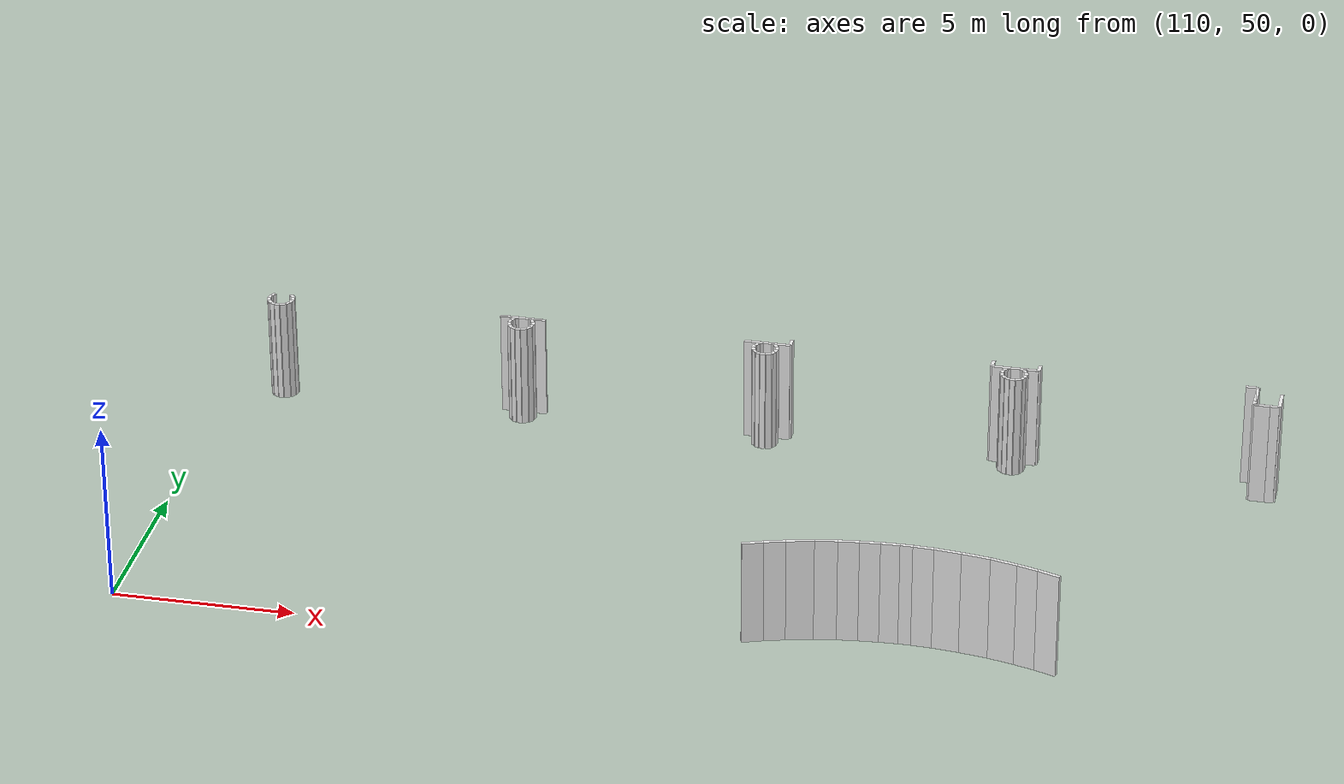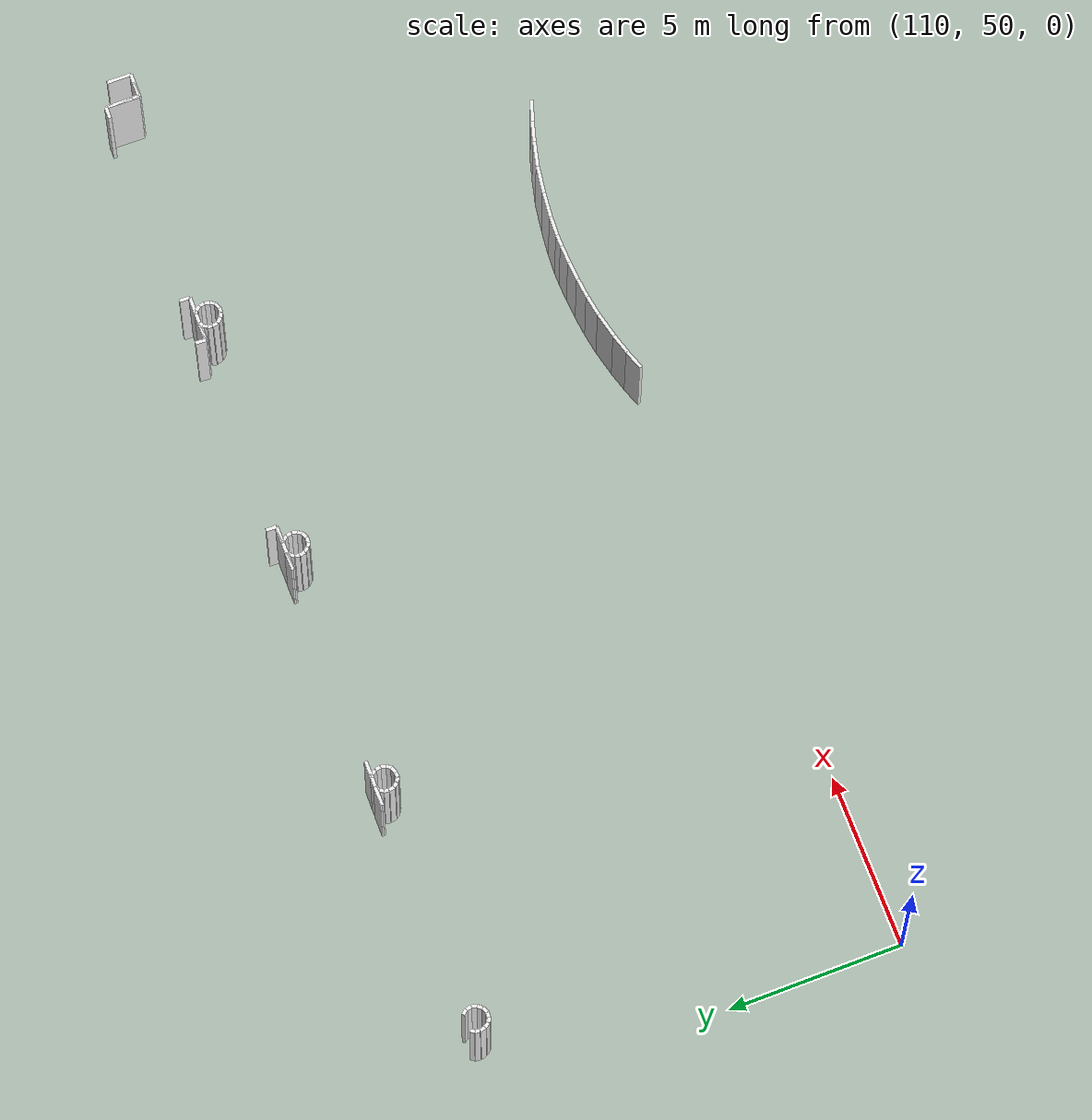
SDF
<sdf version="1.6">
 <world name="default">
  <model name="wall_139.0_61.9_1.5">
   <static>true</static>
   <pose>139.04000000000815 61.91500000003725 1.5 0 0 3.112189366044838</pose>
   <link name="link">
    <visual name="visual">
     <geometry><box><size>0.34014702705292804 0.1 3</size></box></geometry>
     <material>
      <script><uri>file://media/materials/scripts/gazebo.material</uri><name>Gazebo/White</name></script>
     </material>
    </visual>
    <collision name="collision"><geometry><box><size>0.34014702705292804 0.1 3</size></box></geometry></collision>
   </link>
  </model>
  <model name="wall_134.9_51.0_1.5">
   <static>true</static>
   <pose>134.91500000000815 51.03500000014901 1.5 0 0 2.799642826681837</pose>
   <link name="link">
    <visual name="visual">
     <geometry><box><size>0.6262587324856838 0.1 3</size></box></geometry>
     <material>
      <script><uri>file://media/materials/scripts/gazebo.material</uri><name>Gazebo/White</name></script>
     </material>
    </visual>
    <collision name="collision"><geometry><box><size>0.6262587324856838 0.1 3</size></box></geometry></collision>
   </link>
  </model>
  <model name="wall_134.3_51.2_1.5">
   <static>true</static>
   <pose>134.3399999999965 51.21999999997206 1.5 0 0 2.863292995106354</pose>
   <link name="link">
    <visual name="visual">
     <geometry><box><size>0.5824087910532124 0.1 3</size></box></geometry>
     <material>
      <script><uri>file://media/materials/scripts/gazebo.material</uri><name>Gazebo/White</name></script>
     </material>
    </visual>
    <collision name="collision"><geometry><box><size>0.5824087910532124 0.1 3</size></box></geometry></collision>
   </link>
  </model>
  <model name="wall_133.7_51.4_1.5">
   <static>true</static>
   <pose>133.70000000001164 51.389999999897555 1.5 0 0 2.896613990234664</pose>
   <link name="link">
    <visual name="visual">
     <geometry><box><size>0.7421590126247316 0.1 3</size></box></geometry>
     <material>
      <script><uri>file://media/materials/scripts/gazebo.material</uri><name>Gazebo/White</name></script>
     </material>
    </visual>
    <collision name="collision"><geometry><box><size>0.7421590126247316 0.1 3</size></box></geometry></collision>
   </link>
  </model>
  <model name="wall_133.0_51.5_1.5">
   <static>true</static>
   <pose>132.95000000001164 51.54000000003725 1.5 0 0 2.9889433250599438</pose>
   <link name="link">
    <visual name="visual">
     <geometry><box><size>0.7891767863225628 0.1 3</size></box></geometry>
     <material>
      <script><uri>file://media/materials/scripts/gazebo.material</uri><name>Gazebo/White</name></script>
     </material>
    </visual>
    <collision name="collision"><geometry><box><size>0.7891767863225628 0.1 3</size></box></geometry></collision>
   </link>
  </model>
  <model name="wall_132.2_51.6_1.5">
   <static>true</static>
   <pose>132.19500000000698 51.640000000130385 1.5 0 0 3.0324391905773007</pose>
   <link name="link">
    <visual name="visual">
     <geometry><box><size>0.7343704786990871 0.1 3</size></box></geometry>
     <material>
      <script><uri>file://media/materials/scripts/gazebo.material</uri><name>Gazebo/White</name></script>
     </material>
    </visual>
    <collision name="collision"><geometry><box><size>0.7343704786990871 0.1 3</size></box></geometry></collision>
   </link>
  </model>
  <model name="wall_131.6_51.7_1.5">
   <static>true</static>
   <pose>131.55000000001746 51.69500000006519 1.5 0 0 3.0880723854950856</pose>
   <link name="link">
    <visual name="visual">
     <geometry><box><size>0.5608029956991125 0.1 3</size></box></geometry>
     <material>
      <script><uri>file://media/materials/scripts/gazebo.material</uri><name>Gazebo/White</name></script>
     </material>
    </visual>
    <collision name="collision"><geometry><box><size>0.5608029956991125 0.1 3</size></box></geometry></collision>
   </link>
  </model>
  <model name="wall_131.1_51.7_1.5">
   <static>true</static>
   <pose>131.10000000000582 51.70999999996275 1.5 0 0 3.141592653589793</pose>
   <link name="link">
    <visual name="visual">
     <geometry><box><size>0.34000000002561137 0.1 3</size></box></geometry>
     <material>
      <script><uri>file://media/materials/scripts/gazebo.material</uri><name>Gazebo/White</name></script>
     </material>
    </visual>
    <collision name="collision"><geometry><box><size>0.34000000002561137 0.1 3</size></box></geometry></collision>
   </link>
  </model>
  <model name="wall_130.7_51.7_1.5">
   <static>true</static>
   <pose>130.67499999998836 51.699999999953434 1.5 0 0 -3.102397051626987</pose>
   <link name="link">
    <visual name="visual">
     <geometry><box><size>0.5103920062170298 0.1 3</size></box></geometry>
     <material>
      <script><uri>file://media/materials/scripts/gazebo.material</uri><name>Gazebo/White</name></script>
     </material>
    </visual>
    <collision name="collision"><geometry><box><size>0.5103920062170298 0.1 3</size></box></geometry></collision>
   </link>
  </model>
  <model name="wall_130.1_51.7_1.5">
   <static>true</static>
   <pose>130.14499999998952 51.669999999925494 1.5 0 0 -3.068993199790391</pose>
   <link name="link">
    <visual name="visual">
     <geometry><box><size>0.5514526271495808 0.1 3</size></box></geometry>
     <material>
      <script><uri>file://media/materials/scripts/gazebo.material</uri><name>Gazebo/White</name></script>
     </material>
    </visual>
    <collision name="collision"><geometry><box><size>0.5514526271495808 0.1 3</size></box></geometry></collision>
   </link>
  </model>
  <model name="wall_129.6_51.6_1.5">
   <static>true</static>
   <pose>129.5899999999965 51.61999999987893 1.5 0 0 -3.0348569808415653</pose>
   <link name="link">
    <visual name="visual">
     <geometry><box><size>0.5632051136167868 0.1 3</size></box></geometry>
     <material>
      <script><uri>file://media/materials/scripts/gazebo.material</uri><name>Gazebo/White</name></script>
     </material>
    </visual>
    <collision name="collision"><geometry><box><size>0.5632051136167868 0.1 3</size></box></geometry></collision>
   </link>
  </model>
  <model name="wall_129.0_51.5_1.5">
   <static>true</static>
   <pose>129.0100000000093 51.54000000003725 1.5 0 0 -2.9764439767729747</pose>
   <link name="link">
    <visual name="visual">
     <geometry><box><size>0.6082762529456124 0.1 3</size></box></geometry>
     <material>
      <script><uri>file://media/materials/scripts/gazebo.material</uri><name>Gazebo/White</name></script>
     </material>
    </visual>
    <collision name="collision"><geometry><box><size>0.6082762529456124 0.1 3</size></box></geometry></collision>
   </link>
  </model>
  <model name="wall_128.4_51.4_1.5">
   <static>true</static>
   <pose>128.35000000000582 51.40500000002794 1.5 0 0 -2.909727992235222</pose>
   <link name="link">
    <visual name="visual">
     <geometry><box><size>0.7397972696466099 0.1 3</size></box></geometry>
     <material>
      <script><uri>file://media/materials/scripts/gazebo.material</uri><name>Gazebo/White</name></script>
     </material>
    </visual>
    <collision name="collision"><geometry><box><size>0.7397972696466099 0.1 3</size></box></geometry></collision>
   </link>
  </model>
  <model name="wall_127.7_51.2_1.5">
   <static>true</static>
   <pose>127.70999999999185 51.23999999999069 1.5 0 0 -2.863292995106354</pose>
   <link name="link">
    <visual name="visual">
     <geometry><box><size>0.5824087910532124 0.1 3</size></box></geometry>
     <material>
      <script><uri>file://media/materials/scripts/gazebo.material</uri><name>Gazebo/White</name></script>
     </material>
    </visual>
    <collision name="collision"><geometry><box><size>0.5824087910532124 0.1 3</size></box></geometry></collision>
   </link>
  </model>
  <model name="wall_127.2_51.1_1.5">
   <static>true</static>
   <pose>127.15499999999884 51.06500000017695 1.5 0 0 -2.8089729621001154</pose>
   <link name="link">
    <visual name="visual">
     <geometry><box><size>0.581893461009797 0.1 3</size></box></geometry>
     <material>
      <script><uri>file://media/materials/scripts/gazebo.material</uri><name>Gazebo/White</name></script>
     </material>
    </visual>
    <collision name="collision"><geometry><box><size>0.581893461009797 0.1 3</size></box></geometry></collision>
   </link>
  </model>
  <model name="wall_111.2_61.9_1.5">
   <static>true</static>
   <pose>111.22000000000116 61.875 1.5 0 0 -2.199592611857395</pose>
   <link name="link">
    <visual name="visual">
     <geometry><box><size>0.13601470536809043 0.1 3</size></box></geometry>
     <material>
      <script><uri>file://media/materials/scripts/gazebo.material</uri><name>Gazebo/White</name></script>
     </material>
    </visual>
    <collision name="collision"><geometry><box><size>0.13601470536809043 0.1 3</size></box></geometry></collision>
   </link>
  </model>
  <model name="wall_111.2_61.8_1.5">
   <static>true</static>
   <pose>111.16500000000815 61.75499999988824 1.5 0 0 -1.7975951748160817</pose>
   <link name="link">
    <visual name="visual">
     <geometry><box><size>0.13341664052556057 0.1 3</size></box></geometry>
     <material>
      <script><uri>file://media/materials/scripts/gazebo.material</uri><name>Gazebo/White</name></script>
     </material>
    </visual>
    <collision name="collision"><geometry><box><size>0.13341664052556057 0.1 3</size></box></geometry></collision>
   </link>
  </model>
  <model name="wall_111.2_61.6_1.5">
   <static>true</static>
   <pose>111.1700000000128 61.609999999869615 1.5 0 0 -1.3258176640104304</pose>
   <link name="link">
    <visual name="visual">
     <geometry><box><size>0.16492422516418664 0.1 3</size></box></geometry>
     <material>
      <script><uri>file://media/materials/scripts/gazebo.material</uri><name>Gazebo/White</name></script>
     </material>
    </visual>
    <collision name="collision"><geometry><box><size>0.16492422516418664 0.1 3</size></box></geometry></collision>
   </link>
  </model>
  <model name="wall_111.2_61.5_1.5">
   <static>true</static>
   <pose>111.23500000001513 61.46499999985099 1.5 0 0 -0.9652516626544161</pose>
   <link name="link">
    <visual name="visual">
     <geometry><box><size>0.15811388293111006 0.1 3</size></box></geometry>
     <material>
      <script><uri>file://media/materials/scripts/gazebo.material</uri><name>Gazebo/White</name></script>
     </material>
    </visual>
    <collision name="collision"><geometry><box><size>0.15811388293111006 0.1 3</size></box></geometry></collision>
   </link>
  </model>
  <model name="wall_111.3_61.4_1.5">
   <static>true</static>
   <pose>111.34500000000116 61.36999999987893 1.5 0 0 -0.4324077760816295</pose>
   <link name="link">
    <visual name="visual">
     <geometry><box><size>0.14317821060755806 0.1 3</size></box></geometry>
     <material>
      <script><uri>file://media/materials/scripts/gazebo.material</uri><name>Gazebo/White</name></script>
     </material>
    </visual>
    <collision name="collision"><geometry><box><size>0.14317821060755806 0.1 3</size></box></geometry></collision>
   </link>
  </model>
  <model name="wall_111.5_61.3_1.5">
   <static>true</static>
   <pose>111.47999999998137 61.33499999996275 1.5 0 0 -0.07130746318975038</pose>
   <link name="link">
    <visual name="visual">
     <geometry><box><size>0.1403566884741914 0.1 3</size></box></geometry>
     <material>
      <script><uri>file://media/materials/scripts/gazebo.material</uri><name>Gazebo/White</name></script>
     </material>
    </visual>
    <collision name="collision"><geometry><box><size>0.1403566884741914 0.1 3</size></box></geometry></collision>
   </link>
  </model>
  <model name="wall_111.6_61.4_1.5">
   <static>true</static>
   <pose>111.63000000000466 61.36499999999069 1.5 0 0 0.41241044064316335</pose>
   <link name="link">
    <visual name="visual">
     <geometry><box><size>0.17464249192840064 0.1 3</size></box></geometry>
     <material>
      <script><uri>file://media/materials/scripts/gazebo.material</uri><name>Gazebo/White</name></script>
     </material>
    </visual>
    <collision name="collision"><geometry><box><size>0.17464249192840064 0.1 3</size></box></geometry></collision>
   </link>
  </model>
  <model name="wall_111.8_61.5_1.5">
   <static>true</static>
   <pose>111.76000000000931 61.45999999996275 1.5 0 0 0.8760580511707278</pose>
   <link name="link">
    <visual name="visual">
     <geometry><box><size>0.15620499358908305 0.1 3</size></box></geometry>
     <material>
      <script><uri>file://media/materials/scripts/gazebo.material</uri><name>Gazebo/White</name></script>
     </material>
    </visual>
    <collision name="collision"><geometry><box><size>0.15620499358908305 0.1 3</size></box></geometry></collision>
   </link>
  </model>
  <model name="wall_111.8_61.6_1.5">
   <static>true</static>
   <pose>111.8299999999872 61.59499999997206 1.5 0 0 1.310193935023403</pose>
   <link name="link">
    <visual name="visual">
     <geometry><box><size>0.15524174686721334 0.1 3</size></box></geometry>
     <material>
      <script><uri>file://media/materials/scripts/gazebo.material</uri><name>Gazebo/White</name></script>
     </material>
    </visual>
    <collision name="collision"><geometry><box><size>0.15524174686721334 0.1 3</size></box></geometry></collision>
   </link>
  </model>
  <model name="wall_111.8_61.7_1.5">
   <static>true</static>
   <pose>111.83499999999185 61.74499999987893 1.5 0 0 1.7681918865701522</pose>
   <link name="link">
    <visual name="visual">
     <geometry><box><size>0.15297058531052382 0.1 3</size></box></geometry>
     <material>
      <script><uri>file://media/materials/scripts/gazebo.material</uri><name>Gazebo/White</name></script>
     </material>
    </visual>
    <collision name="collision"><geometry><box><size>0.15297058531052382 0.1 3</size></box></geometry></collision>
   </link>
  </model>
  <model name="wall_111.8_61.9_1.5">
   <static>true</static>
   <pose>111.76999999998952 61.88500000000931 1.5 0 0 2.2264919518895905</pose>
   <link name="link">
    <visual name="visual">
     <geometry><box><size>0.16401219497037284 0.1 3</size></box></geometry>
     <material>
      <script><uri>file://media/materials/scripts/gazebo.material</uri><name>Gazebo/White</name></script>
     </material>
    </visual>
    <collision name="collision"><geometry><box><size>0.16401219497037284 0.1 3</size></box></geometry></collision>
   </link>
  </model>
  <model name="wall_118.1_61.9_1.5">
   <static>true</static>
   <pose>118.11999999999534 61.89999999990687 1.5 0 0 0.0</pose>
   <link name="link">
    <visual name="visual">
     <geometry><box><size>0.5400000000372529 0.1 3</size></box></geometry>
     <material>
      <script><uri>file://media/materials/scripts/gazebo.material</uri><name>Gazebo/White</name></script>
     </material>
    </visual>
    <collision name="collision"><geometry><box><size>0.5400000000372529 0.1 3</size></box></geometry></collision>
   </link>
  </model>
  <model name="wall_118.3_61.9_1.5">
   <static>true</static>
   <pose>118.3300000000163 61.86499999999069 1.5 0 0 -2.6135182061888536</pose>
   <link name="link">
    <visual name="visual">
     <geometry><box><size>0.1389244398060078 0.1 3</size></box></geometry>
     <material>
      <script><uri>file://media/materials/scripts/gazebo.material</uri><name>Gazebo/White</name></script>
     </material>
    </visual>
    <collision name="collision"><geometry><box><size>0.1389244398060078 0.1 3</size></box></geometry></collision>
   </link>
  </model>
  <model name="wall_118.2_61.8_1.5">
   <static>true</static>
   <pose>118.23500000001513 61.7750000001397 1.5 0 0 -2.1375255449004795</pose>
   <link name="link">
    <visual name="visual">
     <geometry><box><size>0.13038404799780207 0.1 3</size></box></geometry>
     <material>
      <script><uri>file://media/materials/scripts/gazebo.material</uri><name>Gazebo/White</name></script>
     </material>
    </visual>
    <collision name="collision"><geometry><box><size>0.13038404799780207 0.1 3</size></box></geometry></collision>
   </link>
  </model>
  <model name="wall_118.2_61.7_1.5">
   <static>true</static>
   <pose>118.18499999999767 61.65500000002794 1.5 0 0 -1.7975951744563714</pose>
   <link name="link">
    <visual name="visual">
     <geometry><box><size>0.1334166409923854 0.1 3</size></box></geometry>
     <material>
      <script><uri>file://media/materials/scripts/gazebo.material</uri><name>Gazebo/White</name></script>
     </material>
    </visual>
    <collision name="collision"><geometry><box><size>0.1334166409923854 0.1 3</size></box></geometry></collision>
   </link>
  </model>
  <model name="wall_118.2_61.5_1.5">
   <static>true</static>
   <pose>118.18499999999767 61.51000000000931 1.5 0 0 -1.3854483762720382</pose>
   <link name="link">
    <visual name="visual">
     <geometry><box><size>0.16278820565491986 0.1 3</size></box></geometry>
     <material>
      <script><uri>file://media/materials/scripts/gazebo.material</uri><name>Gazebo/White</name></script>
     </material>
    </visual>
    <collision name="collision"><geometry><box><size>0.16278820565491986 0.1 3</size></box></geometry></collision>
   </link>
  </model>
  <model name="wall_118.2_61.4_1.5">
   <static>true</static>
   <pose>118.25 61.37000000011176 1.5 0 0 -0.8760580511707278</pose>
   <link name="link">
    <visual name="visual">
     <geometry><box><size>0.15620499358908305 0.1 3</size></box></geometry>
     <material>
      <script><uri>file://media/materials/scripts/gazebo.material</uri><name>Gazebo/White</name></script>
     </material>
    </visual>
    <collision name="collision"><geometry><box><size>0.15620499358908305 0.1 3</size></box></geometry></collision>
   </link>
  </model>
  <model name="wall_118.4_61.3_1.5">
   <static>true</static>
   <pose>118.36499999999069 61.2750000001397 1.5 0 0 -0.49394136790495224</pose>
   <link name="link">
    <visual name="visual">
     <geometry><box><size>0.14764823052695686 0.1 3</size></box></geometry>
     <material>
      <script><uri>file://media/materials/scripts/gazebo.material</uri><name>Gazebo/White</name></script>
     </material>
    </visual>
    <collision name="collision"><geometry><box><size>0.14764823052695686 0.1 3</size></box></geometry></collision>
   </link>
  </model>
  <model name="wall_118.5_61.2_1.5">
   <static>true</static>
   <pose>118.5 61.24000000022352 1.5 0 0 0.0</pose>
   <link name="link">
    <visual name="visual">
     <geometry><box><size>0.14000000001396984 0.1 3</size></box></geometry>
     <material>
      <script><uri>file://media/materials/scripts/gazebo.material</uri><name>Gazebo/White</name></script>
     </material>
    </visual>
    <collision name="collision"><geometry><box><size>0.14000000001396984 0.1 3</size></box></geometry></collision>
   </link>
  </model>
  <model name="wall_118.6_61.3_1.5">
   <static>true</static>
   <pose>118.64999999999418 61.27000000001863 1.5 0 0 0.3587706680778179</pose>
   <link name="link">
    <visual name="visual">
     <geometry><box><size>0.1708800747384859 0.1 3</size></box></geometry>
     <material>
      <script><uri>file://media/materials/scripts/gazebo.material</uri><name>Gazebo/White</name></script>
     </material>
    </visual>
    <collision name="collision"><geometry><box><size>0.1708800747384859 0.1 3</size></box></geometry></collision>
   </link>
  </model>
  <model name="wall_118.8_61.4_1.5">
   <static>true</static>
   <pose>118.77999999999884 61.359999999869615 1.5 0 0 0.8760580508844606</pose>
   <link name="link">
    <visual name="visual">
     <geometry><box><size>0.15620499362634668 0.1 3</size></box></geometry>
     <material>
      <script><uri>file://media/materials/scripts/gazebo.material</uri><name>Gazebo/White</name></script>
     </material>
    </visual>
    <collision name="collision"><geometry><box><size>0.15620499362634668 0.1 3</size></box></geometry></collision>
   </link>
  </model>
  <model name="wall_118.8_61.5_1.5">
   <static>true</static>
   <pose>118.84500000000116 61.49499999987893 1.5 0 0 1.373400767019641</pose>
   <link name="link">
    <visual name="visual">
     <geometry><box><size>0.15297058531052382 0.1 3</size></box></geometry>
     <material>
      <script><uri>file://media/materials/scripts/gazebo.material</uri><name>Gazebo/White</name></script>
     </material>
    </visual>
    <collision name="collision"><geometry><box><size>0.15297058531052382 0.1 3</size></box></geometry></collision>
   </link>
  </model>
  <model name="wall_118.8_61.6_1.5">
   <static>true</static>
   <pose>118.84500000000116 61.64500000001863 1.5 0 0 1.7681918859731505</pose>
   <link name="link">
    <visual name="visual">
     <geometry><box><size>0.15297058576714226 0.1 3</size></box></geometry>
     <material>
      <script><uri>file://media/materials/scripts/gazebo.material</uri><name>Gazebo/White</name></script>
     </material>
    </visual>
    <collision name="collision"><geometry><box><size>0.15297058576714226 0.1 3</size></box></geometry></collision>
   </link>
  </model>
  <model name="wall_118.8_61.8_1.5">
   <static>true</static>
   <pose>118.78500000000349 61.78500000014901 1.5 0 0 2.176340990935377</pose>
   <link name="link">
    <visual name="visual">
     <geometry><box><size>0.15811388293111006 0.1 3</size></box></geometry>
     <material>
      <script><uri>file://media/materials/scripts/gazebo.material</uri><name>Gazebo/White</name></script>
     </material>
    </visual>
    <collision name="collision"><geometry><box><size>0.15811388293111006 0.1 3</size></box></geometry></collision>
   </link>
  </model>
  <model name="wall_118.7_61.9_1.5">
   <static>true</static>
   <pose>118.69999999998254 61.87000000011176 1.5 0 0 2.6779450442979487</pose>
   <link name="link">
    <visual name="visual">
     <geometry><box><size>0.0894427191312291 0.1 3</size></box></geometry>
     <material>
      <script><uri>file://media/materials/scripts/gazebo.material</uri><name>Gazebo/White</name></script>
     </material>
    </visual>
    <collision name="collision"><geometry><box><size>0.0894427191312291 0.1 3</size></box></geometry></collision>
   </link>
  </model>
  <model name="wall_118.9_61.9_1.5">
   <static>true</static>
   <pose>118.90499999999884 61.88500000000931 1.5 0 0 -0.020405331178467944</pose>
   <link name="link">
    <visual name="visual">
     <geometry><box><size>0.4901020302475388 0.1 3</size></box></geometry>
     <material>
      <script><uri>file://media/materials/scripts/gazebo.material</uri><name>Gazebo/White</name></script>
     </material>
    </visual>
    <collision name="collision"><geometry><box><size>0.4901020302475388 0.1 3</size></box></geometry></collision>
   </link>
  </model>
  <model name="wall_125.1_61.8_1.5">
   <static>true</static>
   <pose>125.13000000000466 61.799999999813735 1.5 0 0 0.0</pose>
   <link name="link">
    <visual name="visual">
     <geometry><box><size>0.5400000000372529 0.1 3</size></box></geometry>
     <material>
      <script><uri>file://media/materials/scripts/gazebo.material</uri><name>Gazebo/White</name></script>
     </material>
    </visual>
    <collision name="collision"><geometry><box><size>0.5400000000372529 0.1 3</size></box></geometry></collision>
   </link>
  </model>
  <model name="wall_125.3_61.8_1.5">
   <static>true</static>
   <pose>125.34500000000116 61.764999999897555 1.5 0 0 -2.5748634373331596</pose>
   <link name="link">
    <visual name="visual">
     <geometry><box><size>0.13038404805137394 0.1 3</size></box></geometry>
     <material>
      <script><uri>file://media/materials/scripts/gazebo.material</uri><name>Gazebo/White</name></script>
     </material>
    </visual>
    <collision name="collision"><geometry><box><size>0.13038404805137394 0.1 3</size></box></geometry></collision>
   </link>
  </model>
  <model name="wall_125.2_61.7_1.5">
   <static>true</static>
   <pose>125.25 61.675000000046566 1.5 0 0 -2.1995926135249655</pose>
   <link name="link">
    <visual name="visual">
     <geometry><box><size>0.13601470495725726 0.1 3</size></box></geometry>
     <material>
      <script><uri>file://media/materials/scripts/gazebo.material</uri><name>Gazebo/White</name></script>
     </material>
    </visual>
    <collision name="collision"><geometry><box><size>0.13601470495725726 0.1 3</size></box></geometry></collision>
   </link>
  </model>
  <model name="wall_125.2_61.6_1.5">
   <static>true</static>
   <pose>125.19500000000698 61.55500000016764 1.5 0 0 -1.7975951752411936</pose>
   <link name="link">
    <visual name="visual">
     <geometry><box><size>0.13341664053864913 0.1 3</size></box></geometry>
     <material>
      <script><uri>file://media/materials/scripts/gazebo.material</uri><name>Gazebo/White</name></script>
     </material>
    </visual>
    <collision name="collision"><geometry><box><size>0.13341664053864913 0.1 3</size></box></geometry></collision>
   </link>
  </model>
  <model name="wall_125.2_61.4_1.5">
   <static>true</static>
   <pose>125.19999999998254 61.41000000014901 1.5 0 0 -1.3258176640104304</pose>
   <link name="link">
    <visual name="visual">
     <geometry><box><size>0.16492422516418664 0.1 3</size></box></geometry>
     <material>
      <script><uri>file://media/materials/scripts/gazebo.material</uri><name>Gazebo/White</name></script>
     </material>
    </visual>
    <collision name="collision"><geometry><box><size>0.16492422516418664 0.1 3</size></box></geometry></collision>
   </link>
  </model>
  <model name="wall_125.3_61.3_1.5">
   <static>true</static>
   <pose>125.26999999998952 61.27000000001863 1.5 0 0 -0.8760580508844606</pose>
   <link name="link">
    <visual name="visual">
     <geometry><box><size>0.15620499362634668 0.1 3</size></box></geometry>
     <material>
      <script><uri>file://media/materials/scripts/gazebo.material</uri><name>Gazebo/White</name></script>
     </material>
    </visual>
    <collision name="collision"><geometry><box><size>0.15620499362634668 0.1 3</size></box></geometry></collision>
   </link>
  </model>
  <model name="wall_125.4_61.2_1.5">
   <static>true</static>
   <pose>125.38000000000466 61.17999999993481 1.5 0 0 -0.4636476093888572</pose>
   <link name="link">
    <visual name="visual">
     <geometry><box><size>0.1341640786708124 0.1 3</size></box></geometry>
     <material>
      <script><uri>file://media/materials/scripts/gazebo.material</uri><name>Gazebo/White</name></script>
     </material>
    </visual>
    <collision name="collision"><geometry><box><size>0.1341640786708124 0.1 3</size></box></geometry></collision>
   </link>
  </model>
  <model name="wall_125.5_61.1_1.5">
   <static>true</static>
   <pose>125.51500000001397 61.14500000001863 1.5 0 0 -0.06656816228199888</pose>
   <link name="link">
    <visual name="visual">
     <geometry><box><size>0.15033296379209243 0.1 3</size></box></geometry>
     <material>
      <script><uri>file://media/materials/scripts/gazebo.material</uri><name>Gazebo/White</name></script>
     </material>
    </visual>
    <collision name="collision"><geometry><box><size>0.15033296379209243 0.1 3</size></box></geometry></collision>
   </link>
  </model>
  <model name="wall_125.7_61.2_1.5">
   <static>true</static>
   <pose>125.66500000000815 61.170000000158325 1.5 0 0 0.380506377513797</pose>
   <link name="link">
    <visual name="visual">
     <geometry><box><size>0.16155494420236152 0.1 3</size></box></geometry>
     <material>
      <script><uri>file://media/materials/scripts/gazebo.material</uri><name>Gazebo/White</name></script>
     </material>
    </visual>
    <collision name="collision"><geometry><box><size>0.16155494420236152 0.1 3</size></box></geometry></collision>
   </link>
  </model>
  <model name="wall_125.8_61.3_1.5">
   <static>true</static>
   <pose>125.77999999999884 61.265000000130385 1.5 0 0 1.019141343791695</pose>
   <link name="link">
    <visual name="visual">
     <geometry><box><size>0.15264337513809906 0.1 3</size></box></geometry>
     <material>
      <script><uri>file://media/materials/scripts/gazebo.material</uri><name>Gazebo/White</name></script>
     </material>
    </visual>
    <collision name="collision"><geometry><box><size>0.15264337513809906 0.1 3</size></box></geometry></collision>
   </link>
  </model>
  <model name="wall_125.8_61.4_1.5">
   <static>true</static>
   <pose>125.83999999999651 61.40500000002794 1.5 0 0 1.310193935023403</pose>
   <link name="link">
    <visual name="visual">
     <geometry><box><size>0.15524174686721334 0.1 3</size></box></geometry>
     <material>
      <script><uri>file://media/materials/scripts/gazebo.material</uri><name>Gazebo/White</name></script>
     </material>
    </visual>
    <collision name="collision"><geometry><box><size>0.15524174686721334 0.1 3</size></box></geometry></collision>
   </link>
  </model>
  <model name="wall_125.8_61.6_1.5">
   <static>true</static>
   <pose>125.83999999999651 61.55499999993481 1.5 0 0 1.8313987185663902</pose>
   <link name="link">
    <visual name="visual">
     <geometry><box><size>0.15524174686721334 0.1 3</size></box></geometry>
     <material>
      <script><uri>file://media/materials/scripts/gazebo.material</uri><name>Gazebo/White</name></script>
     </material>
    </visual>
    <collision name="collision"><geometry><box><size>0.15524174686721334 0.1 3</size></box></geometry></collision>
   </link>
  </model>
  <model name="wall_125.8_61.7_1.5">
   <static>true</static>
   <pose>125.77499999999418 61.69499999983236 1.5 0 0 2.176340990935377</pose>
   <link name="link">
    <visual name="visual">
     <geometry><box><size>0.15811388293111006 0.1 3</size></box></geometry>
     <material>
      <script><uri>file://media/materials/scripts/gazebo.material</uri><name>Gazebo/White</name></script>
     </material>
    </visual>
    <collision name="collision"><geometry><box><size>0.15811388293111006 0.1 3</size></box></geometry></collision>
   </link>
  </model>
  <model name="wall_125.7_61.8_1.5">
   <static>true</static>
   <pose>125.69000000000233 61.77499999990687 1.5 0 0 2.782821980289233</pose>
   <link name="link">
    <visual name="visual">
     <geometry><box><size>0.08544003750549678 0.1 3</size></box></geometry>
     <material>
      <script><uri>file://media/materials/scripts/gazebo.material</uri><name>Gazebo/White</name></script>
     </material>
    </visual>
    <collision name="collision"><geometry><box><size>0.08544003750549678 0.1 3</size></box></geometry></collision>
   </link>
  </model>
  <model name="wall_125.9_61.8_1.5">
   <static>true</static>
   <pose>125.91000000000349 61.79000000003725 1.5 0 0 0.0</pose>
   <link name="link">
    <visual name="visual">
     <geometry><box><size>0.5199999999604188 0.1 3</size></box></geometry>
     <material>
      <script><uri>file://media/materials/scripts/gazebo.material</uri><name>Gazebo/White</name></script>
     </material>
    </visual>
    <collision name="collision"><geometry><box><size>0.5199999999604188 0.1 3</size></box></geometry></collision>
   </link>
  </model>
  <model name="wall_126.2_61.9_1.5">
   <static>true</static>
   <pose>126.1699999999837 61.93999999994412 1.5 0 0 1.5707963267948966</pose>
   <link name="link">
    <visual name="visual">
     <geometry><box><size>0.2999999998137355 0.1 3</size></box></geometry>
     <material>
      <script><uri>file://media/materials/scripts/gazebo.material</uri><name>Gazebo/White</name></script>
     </material>
    </visual>
    <collision name="collision"><geometry><box><size>0.2999999998137355 0.1 3</size></box></geometry></collision>
   </link>
  </model>
  <model name="wall_131.9_61.9_1.5">
   <static>true</static>
   <pose>131.8649999999907 61.859999999869615 1.5 0 0 -1.6041173227248264</pose>
   <link name="link">
    <visual name="visual">
     <geometry><box><size>0.30016662021022184 0.1 3</size></box></geometry>
     <material>
      <script><uri>file://media/materials/scripts/gazebo.material</uri><name>Gazebo/White</name></script>
     </material>
    </visual>
    <collision name="collision"><geometry><box><size>0.30016662021022184 0.1 3</size></box></geometry></collision>
   </link>
  </model>
  <model name="wall_132.1_61.7_1.5">
   <static>true</static>
   <pose>132.11999999999534 61.705000000074506 1.5 0 0 -0.01922839866933633</pose>
   <link name="link">
    <visual name="visual">
     <geometry><box><size>0.5200961449721592 0.1 3</size></box></geometry>
     <material>
      <script><uri>file://media/materials/scripts/gazebo.material</uri><name>Gazebo/White</name></script>
     </material>
    </visual>
    <collision name="collision"><geometry><box><size>0.5200961449721592 0.1 3</size></box></geometry></collision>
   </link>
  </model>
  <model name="wall_132.3_61.7_1.5">
   <static>true</static>
   <pose>132.3300000000163 61.670000000158325 1.5 0 0 -2.601173152805612</pose>
   <link name="link">
    <visual name="visual">
     <geometry><box><size>0.11661903790569063 0.1 3</size></box></geometry>
     <material>
      <script><uri>file://media/materials/scripts/gazebo.material</uri><name>Gazebo/White</name></script>
     </material>
    </visual>
    <collision name="collision"><geometry><box><size>0.11661903790569063 0.1 3</size></box></geometry></collision>
   </link>
  </model>
  <model name="wall_132.2_61.6_1.5">
   <static>true</static>
   <pose>132.2400000000198 61.58499999996275 1.5 0 0 -2.199592611857395</pose>
   <link name="link">
    <visual name="visual">
     <geometry><box><size>0.13601470536809043 0.1 3</size></box></geometry>
     <material>
      <script><uri>file://media/materials/scripts/gazebo.material</uri><name>Gazebo/White</name></script>
     </material>
    </visual>
    <collision name="collision"><geometry><box><size>0.13601470536809043 0.1 3</size></box></geometry></collision>
   </link>
  </model>
  <model name="wall_132.2_61.5_1.5">
   <static>true</static>
   <pose>132.18499999999767 61.46499999985099 1.5 0 0 -1.7975951752411936</pose>
   <link name="link">
    <visual name="visual">
     <geometry><box><size>0.13341664053864913 0.1 3</size></box></geometry>
     <material>
      <script><uri>file://media/materials/scripts/gazebo.material</uri><name>Gazebo/White</name></script>
     </material>
    </visual>
    <collision name="collision"><geometry><box><size>0.13341664053864913 0.1 3</size></box></geometry></collision>
   </link>
  </model>
  <model name="wall_132.2_61.3_1.5">
   <static>true</static>
   <pose>132.19000000000233 61.32000000006519 1.5 0 0 -1.3258176629832366</pose>
   <link name="link">
    <visual name="visual">
     <geometry><box><size>0.16492422472654628 0.1 3</size></box></geometry>
     <material>
      <script><uri>file://media/materials/scripts/gazebo.material</uri><name>Gazebo/White</name></script>
     </material>
    </visual>
    <collision name="collision"><geometry><box><size>0.16492422472654628 0.1 3</size></box></geometry></collision>
   </link>
  </model>
  <model name="wall_132.3_61.2_1.5">
   <static>true</static>
   <pose>132.27000000001863 61.175000000046566 1.5 0 0 -0.8253768518968939</pose>
   <link name="link">
    <visual name="visual">
     <geometry><box><size>0.17691806038643168 0.1 3</size></box></geometry>
     <material>
      <script><uri>file://media/materials/scripts/gazebo.material</uri><name>Gazebo/White</name></script>
     </material>
    </visual>
    <collision name="collision"><geometry><box><size>0.17691806038643168 0.1 3</size></box></geometry></collision>
   </link>
  </model>
  <model name="wall_132.4_61.1_1.5">
   <static>true</static>
   <pose>132.39500000001863 61.079999999841675 1.5 0 0 -0.4324077759112656</pose>
   <link name="link">
    <visual name="visual">
     <geometry><box><size>0.14317821066040826 0.1 3</size></box></geometry>
     <material>
      <script><uri>file://media/materials/scripts/gazebo.material</uri><name>Gazebo/White</name></script>
     </material>
    </visual>
    <collision name="collision"><geometry><box><size>0.14317821066040826 0.1 3</size></box></geometry></collision>
   </link>
  </model>
  <model name="wall_132.5_61.0_1.5">
   <static>true</static>
   <pose>132.52999999999884 61.044999999925494 1.5 0 0 -0.07130746321929742</pose>
   <link name="link">
    <visual name="visual">
     <geometry><box><size>0.14035668841613164 0.1 3</size></box></geometry>
     <material>
      <script><uri>file://media/materials/scripts/gazebo.material</uri><name>Gazebo/White</name></script>
     </material>
    </visual>
    <collision name="collision"><geometry><box><size>0.14035668841613164 0.1 3</size></box></geometry></collision>
   </link>
  </model>
  <model name="wall_132.7_61.1_1.5">
   <static>true</static>
   <pose>132.67999999999302 61.074999999953434 1.5 0 0 0.41241044064316335</pose>
   <link name="link">
    <visual name="visual">
     <geometry><box><size>0.17464249192840064 0.1 3</size></box></geometry>
     <material>
      <script><uri>file://media/materials/scripts/gazebo.material</uri><name>Gazebo/White</name></script>
     </material>
    </visual>
    <collision name="collision"><geometry><box><size>0.17464249192840064 0.1 3</size></box></geometry></collision>
   </link>
  </model>
  <model name="wall_132.8_61.2_1.5">
   <static>true</static>
   <pose>132.7950000000128 61.169999999925494 1.5 0 0 1.04272187873045</pose>
   <link name="link">
    <visual name="visual">
     <geometry><box><size>0.13892443999455237 0.1 3</size></box></geometry>
     <material>
      <script><uri>file://media/materials/scripts/gazebo.material</uri><name>Gazebo/White</name></script>
     </material>
    </visual>
    <collision name="collision"><geometry><box><size>0.13892443999455237 0.1 3</size></box></geometry></collision>
   </link>
  </model>
  <model name="wall_132.9_61.3_1.5">
   <static>true</static>
   <pose>132.85000000000582 61.30499999993481 1.5 0 0 1.310193935023403</pose>
   <link name="link">
    <visual name="visual">
     <geometry><box><size>0.15524174686721334 0.1 3</size></box></geometry>
     <material>
      <script><uri>file://media/materials/scripts/gazebo.material</uri><name>Gazebo/White</name></script>
     </material>
    </visual>
    <collision name="collision"><geometry><box><size>0.15524174686721334 0.1 3</size></box></geometry></collision>
   </link>
  </model>
  <model name="wall_132.9_61.5_1.5">
   <static>true</static>
   <pose>132.85500000001048 61.454999999841675 1.5 0 0 1.7681918865701522</pose>
   <link name="link">
    <visual name="visual">
     <geometry><box><size>0.15297058531052382 0.1 3</size></box></geometry>
     <material>
      <script><uri>file://media/materials/scripts/gazebo.material</uri><name>Gazebo/White</name></script>
     </material>
    </visual>
    <collision name="collision"><geometry><box><size>0.15297058531052382 0.1 3</size></box></geometry></collision>
   </link>
  </model>
  <model name="wall_132.8_61.6_1.5">
   <static>true</static>
   <pose>132.79000000000815 61.59499999997206 1.5 0 0 2.2264919518895905</pose>
   <link name="link">
    <visual name="visual">
     <geometry><box><size>0.16401219497037284 0.1 3</size></box></geometry>
     <material>
      <script><uri>file://media/materials/scripts/gazebo.material</uri><name>Gazebo/White</name></script>
     </material>
    </visual>
    <collision name="collision"><geometry><box><size>0.16401219497037284 0.1 3</size></box></geometry></collision>
   </link>
  </model>
  <model name="wall_132.7_61.7_1.5">
   <static>true</static>
   <pose>132.69999999998254 61.68000000016764 1.5 0 0 2.6779450442979487</pose>
   <link name="link">
    <visual name="visual">
     <geometry><box><size>0.0894427191312291 0.1 3</size></box></geometry>
     <material>
      <script><uri>file://media/materials/scripts/gazebo.material</uri><name>Gazebo/White</name></script>
     </material>
    </visual>
    <collision name="collision"><geometry><box><size>0.0894427191312291 0.1 3</size></box></geometry></collision>
   </link>
  </model>
  <model name="wall_132.9_61.7_1.5">
   <static>true</static>
   <pose>132.91499999997905 61.69500000006519 1.5 0 0 -0.019605331331456193</pose>
   <link name="link">
    <visual name="visual">
     <geometry><box><size>0.5100980298083324 0.1 3</size></box></geometry>
     <material>
      <script><uri>file://media/materials/scripts/gazebo.material</uri><name>Gazebo/White</name></script>
     </material>
    </visual>
    <collision name="collision"><geometry><box><size>0.5100980298083324 0.1 3</size></box></geometry></collision>
   </link>
  </model>
  <model name="wall_133.2_61.8_1.5">
   <static>true</static>
   <pose>133.17499999998836 61.84000000008382 1.5 0 0 1.5374753309166493</pose>
   <link name="link">
    <visual name="visual">
     <geometry><box><size>0.30016662067562466 0.1 3</size></box></geometry>
     <material>
      <script><uri>file://media/materials/scripts/gazebo.material</uri><name>Gazebo/White</name></script>
     </material>
    </visual>
    <collision name="collision"><geometry><box><size>0.30016662067562466 0.1 3</size></box></geometry></collision>
   </link>
  </model>
  <model name="wall_139.2_61.5_1.5">
   <static>true</static>
   <pose>139.2050000000163 61.5250000001397 1.5 0 0 -1.5837826097268481</pose>
   <link name="link">
    <visual name="visual">
     <geometry><box><size>0.770064932345884 0.1 3</size></box></geometry>
     <material>
      <script><uri>file://media/materials/scripts/gazebo.material</uri><name>Gazebo/White</name></script>
     </material>
    </visual>
    <collision name="collision"><geometry><box><size>0.770064932345884 0.1 3</size></box></geometry></collision>
   </link>
  </model>
  <model name="wall_139.2_61.0_1.5">
   <static>true</static>
   <pose>139.19500000000698 61.045000000158325 1.5 0 0 -1.6233793884701562</pose>
   <link name="link">
    <visual name="visual">
     <geometry><box><size>0.19026297584909185 0.1 3</size></box></geometry>
     <material>
      <script><uri>file://media/materials/scripts/gazebo.material</uri><name>Gazebo/White</name></script>
     </material>
    </visual>
    <collision name="collision"><geometry><box><size>0.19026297584909185 0.1 3</size></box></geometry></collision>
   </link>
  </model>
  <model name="wall_139.4_60.9_1.5">
   <static>true</static>
   <pose>139.4100000000035 60.94500000006519 1.5 0 0 -0.022723361391563727</pose>
   <link name="link">
    <visual name="visual">
     <geometry><box><size>0.44011362170113727 0.1 3</size></box></geometry>
     <material>
      <script><uri>file://media/materials/scripts/gazebo.material</uri><name>Gazebo/White</name></script>
     </material>
    </visual>
    <collision name="collision"><geometry><box><size>0.44011362170113727 0.1 3</size></box></geometry></collision>
   </link>
  </model>
  <model name="wall_139.8_60.9_1.5">
   <static>true</static>
   <pose>139.75500000000466 60.93999999994412 1.5 0 0 0.0</pose>
   <link name="link">
    <visual name="visual">
     <geometry><box><size>0.25 0.1 3</size></box></geometry>
     <material>
      <script><uri>file://media/materials/scripts/gazebo.material</uri><name>Gazebo/White</name></script>
     </material>
    </visual>
    <collision name="collision"><geometry><box><size>0.25 0.1 3</size></box></geometry></collision>
   </link>
  </model>
  <model name="wall_139.9_61.3_1.5">
   <static>true</static>
   <pose>139.8850000000093 61.28499999991618 1.5 0 0 1.5563045877147286</pose>
   <link name="link">
    <visual name="visual">
     <geometry><box><size>0.6900724599077062 0.1 3</size></box></geometry>
     <material>
      <script><uri>file://media/materials/scripts/gazebo.material</uri><name>Gazebo/White</name></script>
     </material>
    </visual>
    <collision name="collision"><geometry><box><size>0.6900724599077062 0.1 3</size></box></geometry></collision>
   </link>
  </model>
  <model name="wall_118.5_61.9_1.5">
   <static>true</static>
   <pose>118.5 61.889999999897555 1.5 0 0 -0.015383401794368852</pose>
   <link name="link">
    <visual name="visual">
     <geometry><box><size>1.3001538370984478 0.1 3</size></box></geometry>
     <material>
      <script><uri>file://media/materials/scripts/gazebo.material</uri><name>Gazebo/White</name></script>
     </material>
    </visual>
    <collision name="collision"><geometry><box><size>1.3001538370984478 0.1 3</size></box></geometry></collision>
   </link>
  </model>
  <model name="wall_125.5_61.8_1.5">
   <static>true</static>
   <pose>125.51499999998487 61.794999999925494 1.5 0 0 -0.007633439346892596</pose>
   <link name="link">
    <visual name="visual">
     <geometry><box><size>1.3100381673788857 0.1 3</size></box></geometry>
     <material>
      <script><uri>file://media/materials/scripts/gazebo.material</uri><name>Gazebo/White</name></script>
     </material>
    </visual>
    <collision name="collision"><geometry><box><size>1.3100381673788857 0.1 3</size></box></geometry></collision>
   </link>
  </model>
  <model name="wall_132.5_61.7_1.5">
   <static>true</static>
   <pose>132.51499999998487 61.699999999953434 1.5 0 0 -0.015265989561022346</pose>
   <link name="link">
    <visual name="visual">
     <geometry><box><size>1.3101526628582811 0.1 3</size></box></geometry>
     <material>
      <script><uri>file://media/materials/scripts/gazebo.material</uri><name>Gazebo/White</name></script>
     </material>
    </visual>
    <collision name="collision"><geometry><box><size>1.3101526628582811 0.1 3</size></box></geometry></collision>
   </link>
  </model>
  <model name="wall_139.2_61.4_1.5">
   <static>true</static>
   <pose>139.20000000001164 61.43000000016764 1.5 0 0 -1.5916266468513158</pose>
   <link name="link">
    <visual name="visual">
     <geometry><box><size>0.9602083106957674 0.1 3</size></box></geometry>
     <material>
      <script><uri>file://media/materials/scripts/gazebo.material</uri><name>Gazebo/White</name></script>
     </material>
    </visual>
    <collision name="collision"><geometry><box><size>0.9602083106957674 0.1 3</size></box></geometry></collision>
   </link>
  </model>
  <model name="wall_139.5_60.9_1.5">
   <static>true</static>
   <pose>139.5350000000035 60.94500000006519 1.5 0 0 -0.014491739416310578</pose>
   <link name="link">
    <visual name="visual">
     <geometry><box><size>0.6900724599692818 0.1 3</size></box></geometry>
     <material>
      <script><uri>file://media/materials/scripts/gazebo.material</uri><name>Gazebo/White</name></script>
     </material>
    </visual>
    <collision name="collision"><geometry><box><size>0.6900724599692818 0.1 3</size></box></geometry></collision>
   </link>
  </model>
 </world>
</sdf>
